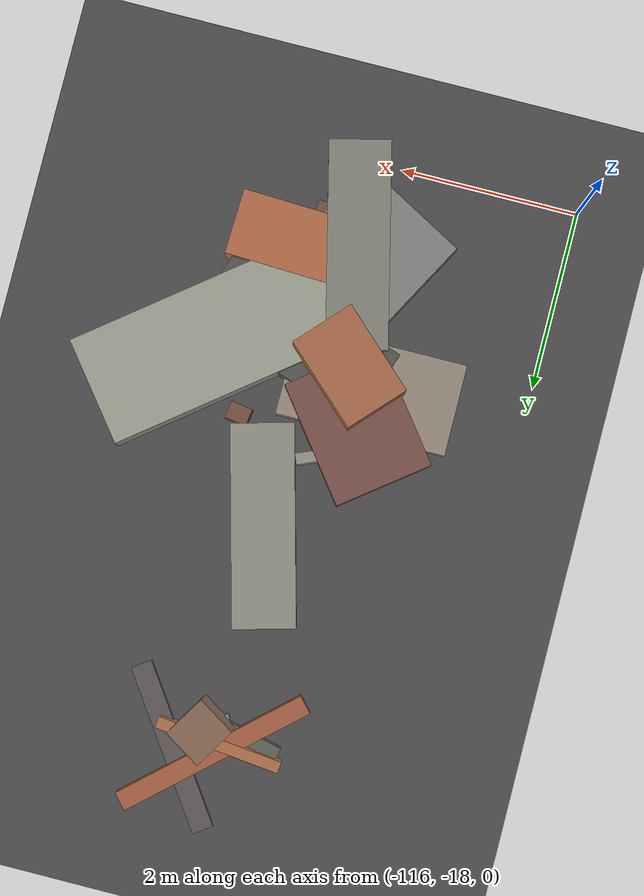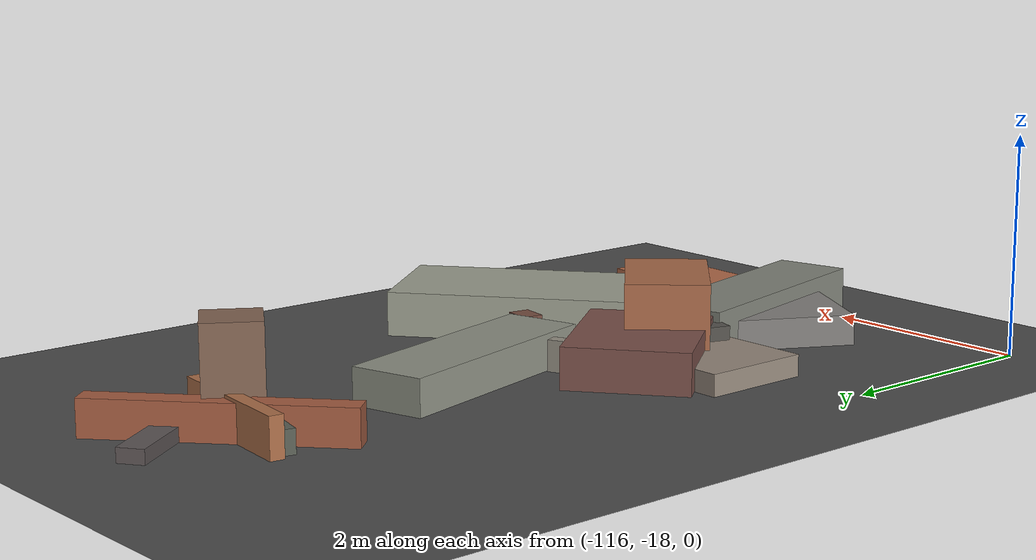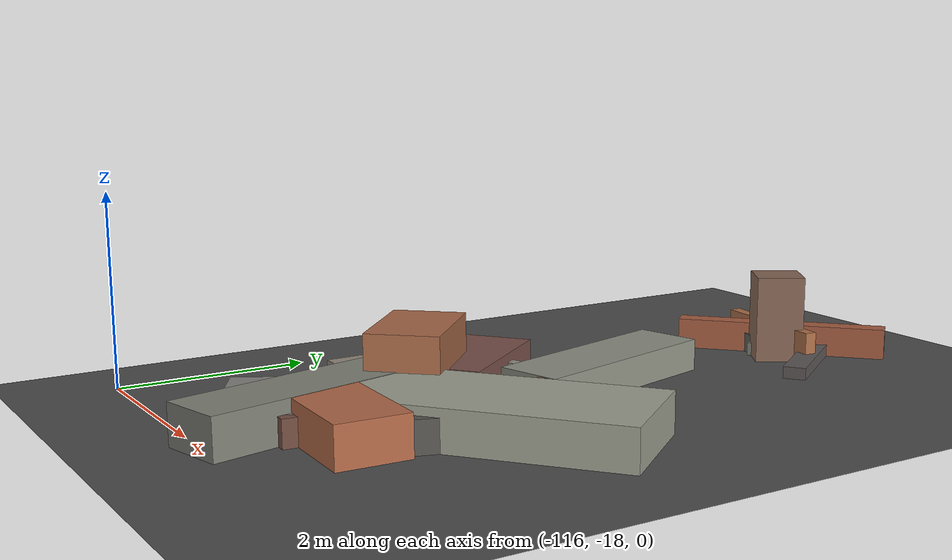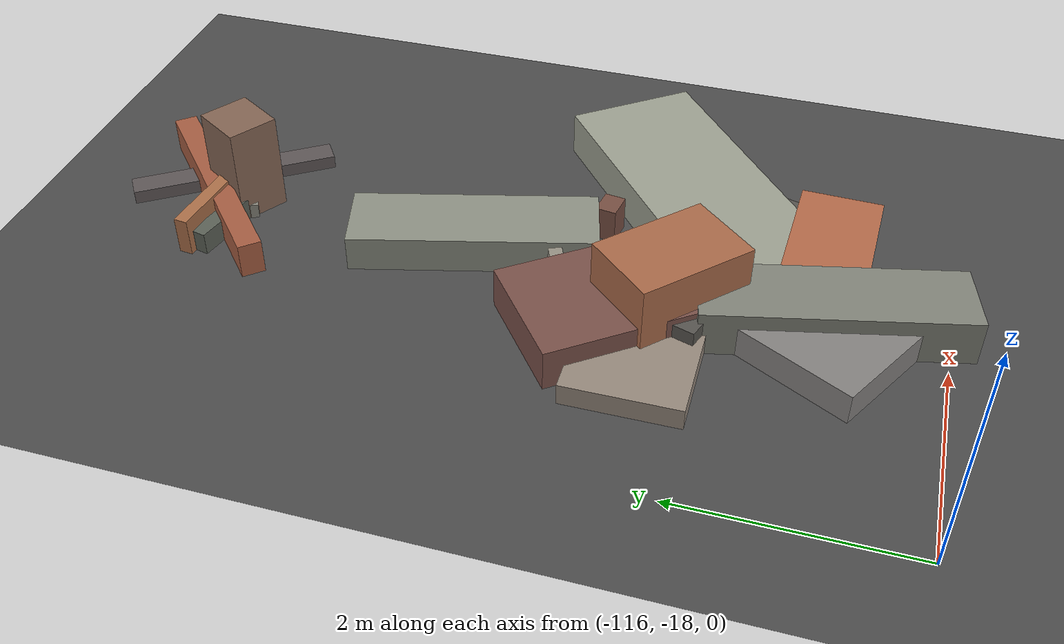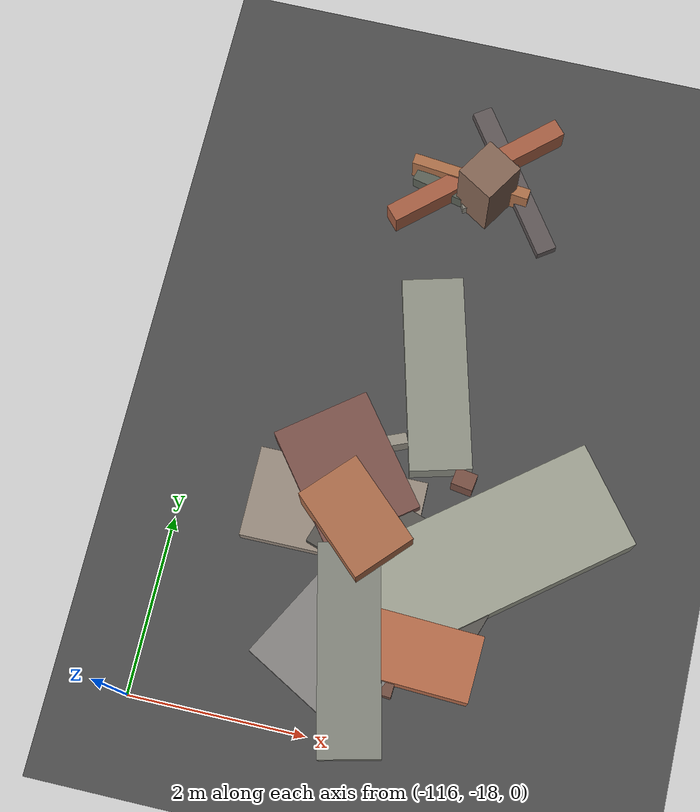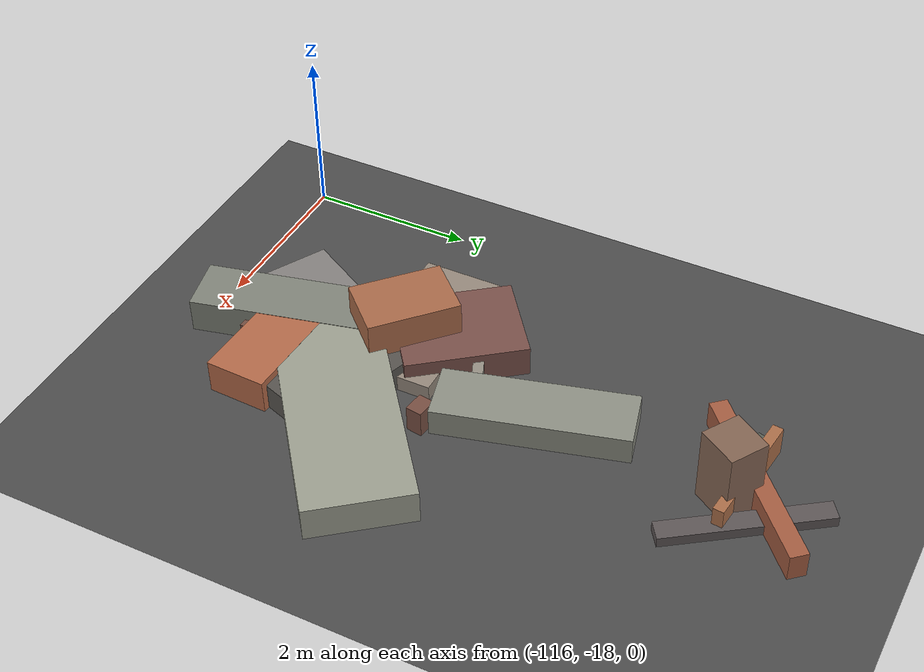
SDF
<sdf version="1.6">
 <world name="navitas_arena">
  <model name="ground_plane">
   <static>true</static>
   <link name="link">
    <collision name="collision">
     <geometry><plane><normal>0 0 1</normal><size>400 400</size></plane></geometry>
     <surface><friction><ode><mu>0.800</mu><mu2>0.800</mu2></ode></friction></surface>
    </collision>
    <visual name="visual">
     <cast_shadows>false</cast_shadows>
     <geometry><plane><normal>0 0 1</normal><size>400 400</size></plane></geometry>
     <material>
      <specular>0.04 0.04 0.04 1</specular>
      <script>
       <uri>file://media/materials/scripts/navitas_asphalt.material</uri>
       <name>Navitas/RealArenaAsphalt</name>
      </script>
     </material>
    </visual>
   </link>
  </model>
  <model name="deb_kolay_10">
   <static>true</static>
   <pose>-113.454 -11.260 0.000 0 0 0</pose>
   <link name="link">
    <collision name="col_0">
     <pose>-0.143 -0.192 0.070 0.000 0.000 2.012</pose>
     <geometry><box><size>0.391 0.278 0.140</size></box></geometry>
    </collision>
    <visual name="vis_0">
     <pose>-0.143 -0.192 0.070 0.000 0.000 2.012</pose>
     <geometry><box><size>0.391 0.278 0.140</size></box></geometry>
     <material>
      <ambient>0.50 0.49 0.46 1</ambient>
      <diffuse>0.54 0.53 0.49 1</diffuse>
      <specular>0.05 0.05 0.045 1</specular>
     </material>
    </visual>
    <collision name="col_1">
     <pose>0.048 -0.225 0.464 0.000 0.000 1.013</pose>
     <geometry><box><size>0.508 0.474 0.927</size></box></geometry>
    </collision>
    <visual name="vis_1">
     <pose>0.048 -0.225 0.464 0.000 0.000 1.013</pose>
     <geometry><box><size>0.508 0.474 0.927</size></box></geometry>
     <material>
      <ambient>0.48 0.37 0.30 1</ambient>
      <diffuse>0.52 0.40 0.33 1</diffuse>
      <specular>0.05 0.05 0.045 1</specular>
     </material>
    </visual>
    <collision name="col_2">
     <pose>0.329 0.072 0.063 0.000 0.000 2.180</pose>
     <geometry><box><size>1.935 0.238 0.126</size></box></geometry>
    </collision>
    <visual name="vis_2">
     <pose>0.329 0.072 0.063 0.000 0.000 2.180</pose>
     <geometry><box><size>1.935 0.238 0.126</size></box></geometry>
     <material>
      <ambient>0.34 0.31 0.31 1</ambient>
      <diffuse>0.37 0.34 0.34 1</diffuse>
      <specular>0.05 0.05 0.045 1</specular>
     </material>
    </visual>
    <collision name="col_3">
     <pose>-0.163 -0.096 0.178 0.000 0.000 -0.107</pose>
     <geometry><box><size>1.415 0.128 0.357</size></box></geometry>
    </collision>
    <visual name="vis_3">
     <pose>-0.163 -0.096 0.178 0.000 0.000 -0.107</pose>
     <geometry><box><size>1.415 0.128 0.357</size></box></geometry>
     <material>
      <ambient>0.63 0.41 0.27 1</ambient>
      <diffuse>0.68 0.44 0.29 1</diffuse>
      <specular>0.05 0.05 0.045 1</specular>
     </material>
    </visual>
    <collision name="col_4">
     <pose>-0.127 0.009 0.164 0.000 0.000 0.730</pose>
     <geometry><box><size>2.267 0.215 0.328</size></box></geometry>
    </collision>
    <visual name="vis_4">
     <pose>-0.127 0.009 0.164 0.000 0.000 0.730</pose>
     <geometry><box><size>2.267 0.215 0.328</size></box></geometry>
     <material>
      <ambient>0.60 0.34 0.24 1</ambient>
      <diffuse>0.65 0.37 0.26 1</diffuse>
      <specular>0.05 0.05 0.045 1</specular>
     </material>
    </visual>
    <collision name="col_5">
     <pose>-0.312 -0.257 0.105 0.000 0.000 -0.228</pose>
     <geometry><box><size>1.034 0.151 0.210</size></box></geometry>
    </collision>
    <visual name="vis_5">
     <pose>-0.312 -0.257 0.105 0.000 0.000 -0.228</pose>
     <geometry><box><size>1.034 0.151 0.210</size></box></geometry>
     <material>
      <ambient>0.33 0.35 0.32 1</ambient>
      <diffuse>0.36 0.38 0.34 1</diffuse>
      <specular>0.05 0.05 0.045 1</specular>
     </material>
    </visual>
   </link>
  </model>
  <model name="deb_kolay_28">
   <static>true</static>
   <pose>-113.008 -15.497 0.000 0 0 0</pose>
   <link name="link">
    <collision name="col_0">
     <pose>-1.263 -0.030 0.099 0.000 0.000 3.145</pose>
     <geometry><box><size>1.917 1.028 0.198</size></box></geometry>
    </collision>
    <visual name="vis_0">
     <pose>-1.263 -0.030 0.099 0.000 0.000 3.145</pose>
     <geometry><box><size>1.917 1.028 0.198</size></box></geometry>
     <material>
      <ambient>0.55 0.50 0.45 1</ambient>
      <diffuse>0.59 0.54 0.49 1</diffuse>
      <specular>0.05 0.05 0.045 1</specular>
     </material>
    </visual>
    <collision name="col_1">
     <pose>-1.216 0.398 0.190 0.000 0.000 2.226</pose>
     <geometry><box><size>1.441 1.126 0.379</size></box></geometry>
    </collision>
    <visual name="vis_1">
     <pose>-1.216 0.398 0.190 0.000 0.000 2.226</pose>
     <geometry><box><size>1.441 1.126 0.379</size></box></geometry>
     <material>
      <ambient>0.45 0.30 0.27 1</ambient>
      <diffuse>0.48 0.32 0.29 1</diffuse>
      <specular>0.05 0.05 0.045 1</specular>
     </material>
    </visual>
    <collision name="col_2">
     <pose>0.431 -0.609 0.145 0.000 0.000 1.589</pose>
     <geometry><box><size>1.217 0.152 0.289</size></box></geometry>
    </collision>
    <visual name="vis_2">
     <pose>0.431 -0.609 0.145 0.000 0.000 1.589</pose>
     <geometry><box><size>1.217 0.152 0.289</size></box></geometry>
     <material>
      <ambient>0.72 0.69 0.60 1</ambient>
      <diffuse>0.78 0.74 0.65 1</diffuse>
      <specular>0.05 0.05 0.045 1</specular>
     </material>
    </visual>
    <collision name="col_3">
     <pose>0.447 -0.197 0.207 0.000 0.000 3.808</pose>
     <geometry><box><size>3.127 1.234 0.415</size></box></geometry>
    </collision>
    <visual name="vis_3">
     <pose>0.447 -0.197 0.207 0.000 0.000 3.808</pose>
     <geometry><box><size>3.127 1.234 0.415</size></box></geometry>
     <material>
      <ambient>0.57 0.59 0.52 1</ambient>
      <diffuse>0.62 0.63 0.57 1</diffuse>
      <specular>0.05 0.05 0.045 1</specular>
     </material>
    </visual>
    <collision name="col_4">
     <pose>0.369 -0.012 0.071 0.000 0.000 2.088</pose>
     <geometry><box><size>0.248 0.465 0.142</size></box></geometry>
    </collision>
    <visual name="vis_4">
     <pose>0.369 -0.012 0.071 0.000 0.000 2.088</pose>
     <geometry><box><size>0.248 0.465 0.142</size></box></geometry>
     <material>
      <ambient>0.60 0.37 0.23 1</ambient>
      <diffuse>0.65 0.40 0.25 1</diffuse>
      <specular>0.05 0.05 0.045 1</specular>
     </material>
    </visual>
    <collision name="col_5">
     <pose>-0.319 -0.377 0.163 0.000 0.000 2.824</pose>
     <geometry><box><size>2.133 0.885 0.326</size></box></geometry>
    </collision>
    <visual name="vis_5">
     <pose>-0.319 -0.377 0.163 0.000 0.000 2.824</pose>
     <geometry><box><size>2.133 0.885 0.326</size></box></geometry>
     <material>
      <ambient>0.32 0.31 0.29 1</ambient>
      <diffuse>0.34 0.33 0.31 1</diffuse>
      <specular>0.05 0.05 0.045 1</specular>
     </material>
    </visual>
   </link>
  </model>
  <model name="deb_kolay_59">
   <static>true</static>
   <pose>-113.424 -16.784 0.000 0 0 0</pose>
   <link name="link">
    <collision name="col_0">
     <pose>-0.047 0.060 0.074 0.000 0.000 3.241</pose>
     <geometry><box><size>1.138 0.306 0.149</size></box></geometry>
    </collision>
    <visual name="vis_0">
     <pose>-0.047 0.060 0.074 0.000 0.000 3.241</pose>
     <geometry><box><size>1.138 0.306 0.149</size></box></geometry>
     <material>
      <ambient>0.40 0.26 0.22 1</ambient>
      <diffuse>0.43 0.28 0.24 1</diffuse>
      <specular>0.05 0.05 0.045 1</specular>
     </material>
    </visual>
    <collision name="col_1">
     <pose>0.312 -0.114 0.208 0.000 0.000 3.101</pose>
     <geometry><box><size>1.500 0.734 0.416</size></box></geometry>
    </collision>
    <visual name="vis_1">
     <pose>0.312 -0.114 0.208 0.000 0.000 3.101</pose>
     <geometry><box><size>1.500 0.734 0.416</size></box></geometry>
     <material>
      <ambient>0.66 0.39 0.26 1</ambient>
      <diffuse>0.71 0.42 0.29 1</diffuse>
      <specular>0.05 0.05 0.045 1</specular>
     </material>
    </visual>
    <collision name="col_2">
     <pose>0.113 -0.390 0.140 0.000 0.000 3.073</pose>
     <geometry><box><size>0.267 0.456 0.279</size></box></geometry>
    </collision>
    <visual name="vis_2">
     <pose>0.113 -0.390 0.140 0.000 0.000 3.073</pose>
     <geometry><box><size>0.267 0.456 0.279</size></box></geometry>
     <material>
      <ambient>0.42 0.28 0.24 1</ambient>
      <diffuse>0.45 0.31 0.26 1</diffuse>
      <specular>0.05 0.05 0.045 1</specular>
     </material>
    </visual>
    <collision name="col_3">
     <pose>-0.316 -0.228 0.210 0.000 0.000 1.803</pose>
     <geometry><box><size>2.314 0.688 0.420</size></box></geometry>
    </collision>
    <visual name="vis_3">
     <pose>-0.316 -0.228 0.210 0.000 0.000 1.803</pose>
     <geometry><box><size>2.314 0.688 0.420</size></box></geometry>
     <material>
      <ambient>0.47 0.48 0.44 1</ambient>
      <diffuse>0.51 0.52 0.48 1</diffuse>
      <specular>0.05 0.05 0.045 1</specular>
     </material>
    </visual>
    <collision name="col_4">
     <pose>-0.452 -0.181 0.140 0.000 0.000 1.068</pose>
     <geometry><box><size>1.403 1.335 0.281</size></box></geometry>
    </collision>
    <visual name="vis_4">
     <pose>-0.452 -0.181 0.140 0.000 0.000 1.068</pose>
     <geometry><box><size>1.403 1.335 0.281</size></box></geometry>
     <material>
      <ambient>0.48 0.48 0.46 1</ambient>
      <diffuse>0.52 0.51 0.50 1</diffuse>
      <specular>0.05 0.05 0.045 1</specular>
     </material>
    </visual>
    <collision name="col_5">
     <pose>-0.362 0.047 0.098 0.000 0.000 0.654</pose>
     <geometry><box><size>0.220 0.438 0.196</size></box></geometry>
    </collision>
    <visual name="vis_5">
     <pose>-0.362 0.047 0.098 0.000 0.000 0.654</pose>
     <geometry><box><size>0.220 0.438 0.196</size></box></geometry>
     <material>
      <ambient>0.67 0.64 0.56 1</ambient>
      <diffuse>0.72 0.69 0.61 1</diffuse>
      <specular>0.05 0.05 0.045 1</specular>
     </material>
    </visual>
    <collision name="col_6">
     <pose>-0.016 0.024 0.185 0.000 0.000 3.266</pose>
     <geometry><box><size>1.111 0.273 0.370</size></box></geometry>
    </collision>
    <visual name="vis_6">
     <pose>-0.016 0.024 0.185 0.000 0.000 3.266</pose>
     <geometry><box><size>1.111 0.273 0.370</size></box></geometry>
     <material>
      <ambient>0.70 0.67 0.60 1</ambient>
      <diffuse>0.76 0.73 0.65 1</diffuse>
      <specular>0.05 0.05 0.045 1</specular>
     </material>
    </visual>
   </link>
  </model>
  <model name="deb_kolay_104">
   <static>true</static>
   <pose>-113.491 -14.731 0.000 0 0 0</pose>
   <link name="link">
    <collision name="col_0">
     <pose>-0.004 0.954 0.166 0.000 0.000 1.831</pose>
     <geometry><box><size>2.249 0.703 0.333</size></box></geometry>
    </collision>
    <visual name="vis_0">
     <pose>-0.004 0.954 0.166 0.000 0.000 1.831</pose>
     <geometry><box><size>2.249 0.703 0.333</size></box></geometry>
     <material>
      <ambient>0.52 0.53 0.48 1</ambient>
      <diffuse>0.56 0.57 0.52 1</diffuse>
      <specular>0.05 0.05 0.045 1</specular>
     </material>
    </visual>
    <collision name="col_1">
     <pose>-0.785 -0.106 0.143 0.000 0.000 0.402</pose>
     <geometry><box><size>1.348 0.124 0.287</size></box></geometry>
    </collision>
    <visual name="vis_1">
     <pose>-0.785 -0.106 0.143 0.000 0.000 0.402</pose>
     <geometry><box><size>1.348 0.124 0.287</size></box></geometry>
     <material>
      <ambient>0.55 0.53 0.48 1</ambient>
      <diffuse>0.59 0.57 0.52 1</diffuse>
      <specular>0.05 0.05 0.045 1</specular>
     </material>
    </visual>
    <collision name="col_2">
     <pose>0.563 -0.171 0.163 0.000 0.000 1.422</pose>
     <geometry><box><size>0.194 0.248 0.326</size></box></geometry>
    </collision>
    <visual name="vis_2">
     <pose>0.563 -0.171 0.163 0.000 0.000 1.422</pose>
     <geometry><box><size>0.194 0.248 0.326</size></box></geometry>
     <material>
      <ambient>0.43 0.29 0.24 1</ambient>
      <diffuse>0.47 0.31 0.26 1</diffuse>
      <specular>0.05 0.05 0.045 1</specular>
     </material>
    </visual>
    <collision name="col_3">
     <pose>-0.488 -0.927 0.390 0.000 0.000 2.392</pose>
     <geometry><box><size>1.101 0.747 0.781</size></box></geometry>
    </collision>
    <visual name="vis_3">
     <pose>-0.488 -0.927 0.390 0.000 0.000 2.392</pose>
     <geometry><box><size>1.101 0.747 0.781</size></box></geometry>
     <material>
      <ambient>0.62 0.39 0.27 1</ambient>
      <diffuse>0.67 0.42 0.29 1</diffuse>
      <specular>0.05 0.05 0.045 1</specular>
     </material>
    </visual>
   </link>
  </model>
 </world>
</sdf>
